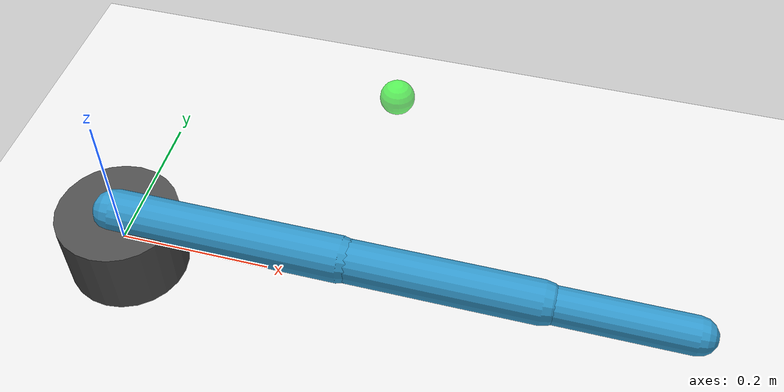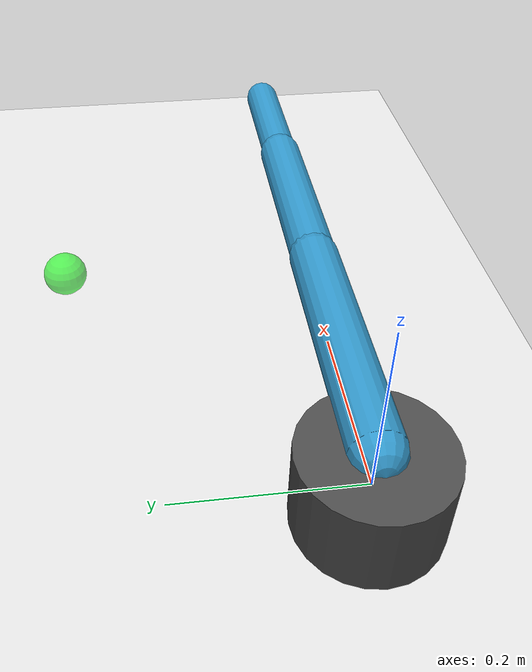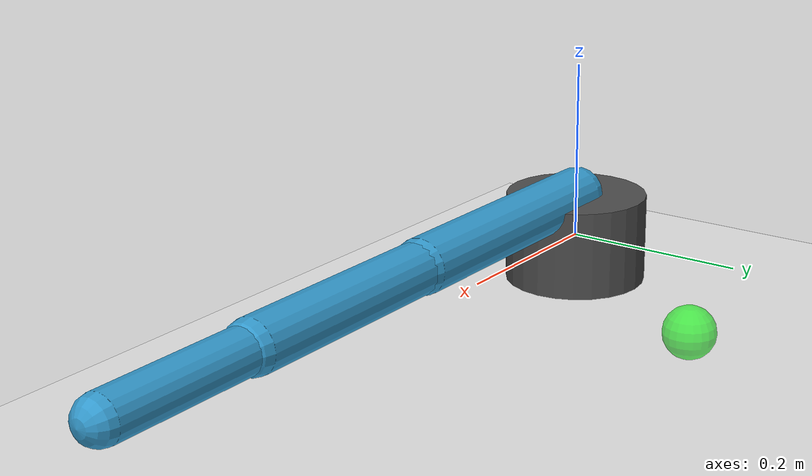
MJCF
<mujoco model="arm3dof_planar">
  <compiler angle="radian" inertiafromgeom="true"/>
  <option timestep="0.002" gravity="0 0 -9.81" integrator="RK4"/>

  <default>
    <joint damping="0.15" armature="0.01" limited="true"/>
    <geom rgba="0.2 0.6 0.8 1" contype="1" conaffinity="1"/>
    <motor ctrllimited="true"/>
  </default>

  <worldbody>
    <light diffuse="0.8 0.8 0.8" pos="0 0 3" dir="0 0 -1"/>
    <geom name="floor" type="plane" size="2 2 0.1" rgba="0.9 0.9 0.9 1" pos="0 0 -0.05"/>

    <body name="base" pos="0 0 0">
      <geom type="cylinder" size="0.08 0.05" rgba="0.3 0.3 0.3 1"/>
      <body name="link1" pos="0 0 0.05">
        <joint name="joint1" type="hinge" axis="0 0 1" range="-3.14 3.14"/>
        <geom type="capsule" fromto="0 0 0  0.3 0 0" size="0.03"/>
        <body name="link2" pos="0.3 0 0">
          <joint name="joint2" type="hinge" axis="0 0 1" range="-2.8 2.8"/>
          <geom type="capsule" fromto="0 0 0  0.25 0 0" size="0.028"/>
          <body name="link3" pos="0.25 0 0">
            <joint name="joint3" type="hinge" axis="0 0 1" range="-2.8 2.8"/>
            <geom type="capsule" fromto="0 0 0  0.18 0 0" size="0.024"/>
            <site name="end_effector" pos="0.18 0 0" size="0.02" rgba="1 0 0 1"/>
          </body>
        </body>
      </body>
    </body>

    <body name="target" pos="0.3 0.3 0.05" mocap="true">
      <geom type="sphere" size="0.025" rgba="0 1 0 0.6" contype="0" conaffinity="0"/>
    </body>
  </worldbody>

  <actuator>
    <motor name="motor1" joint="joint1" ctrlrange="-15 15" gear="1"/>
    <motor name="motor2" joint="joint2" ctrlrange="-10 10" gear="1"/>
    <motor name="motor3" joint="joint3" ctrlrange="-6 6" gear="1"/>
  </actuator>
</mujoco>
